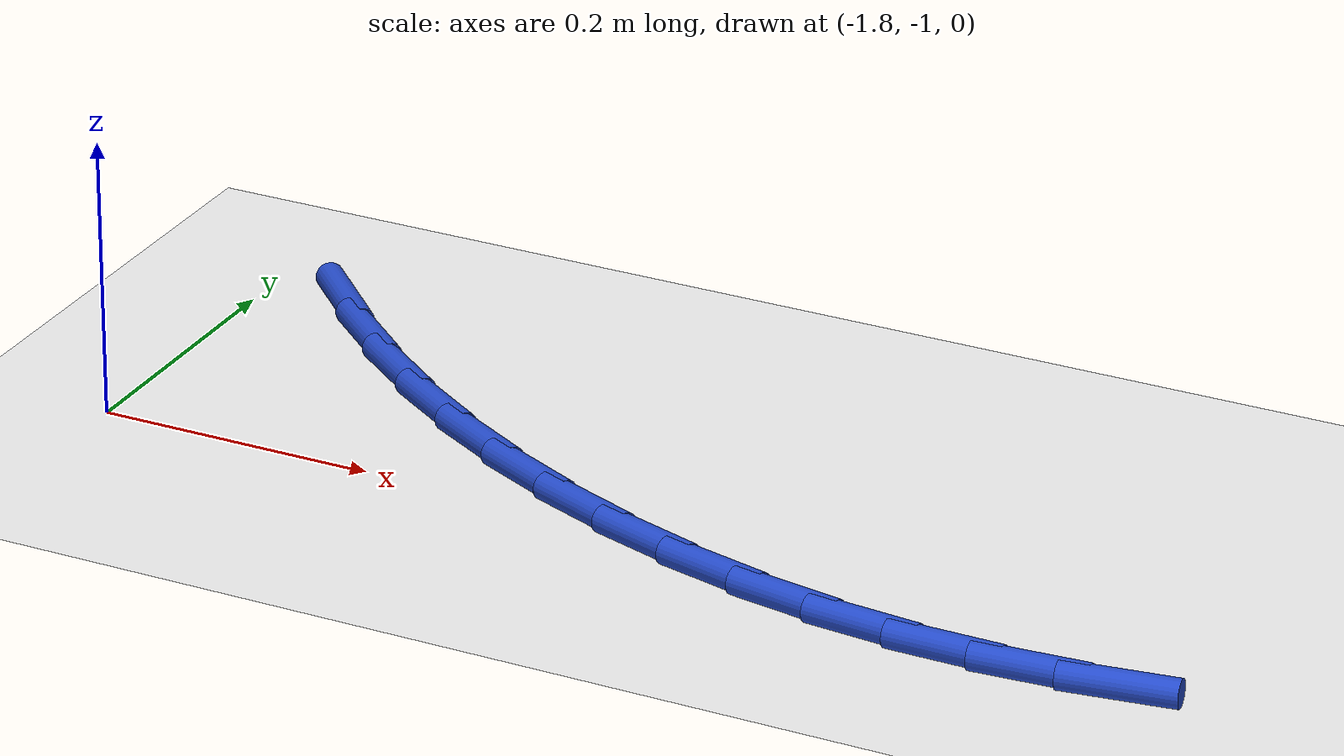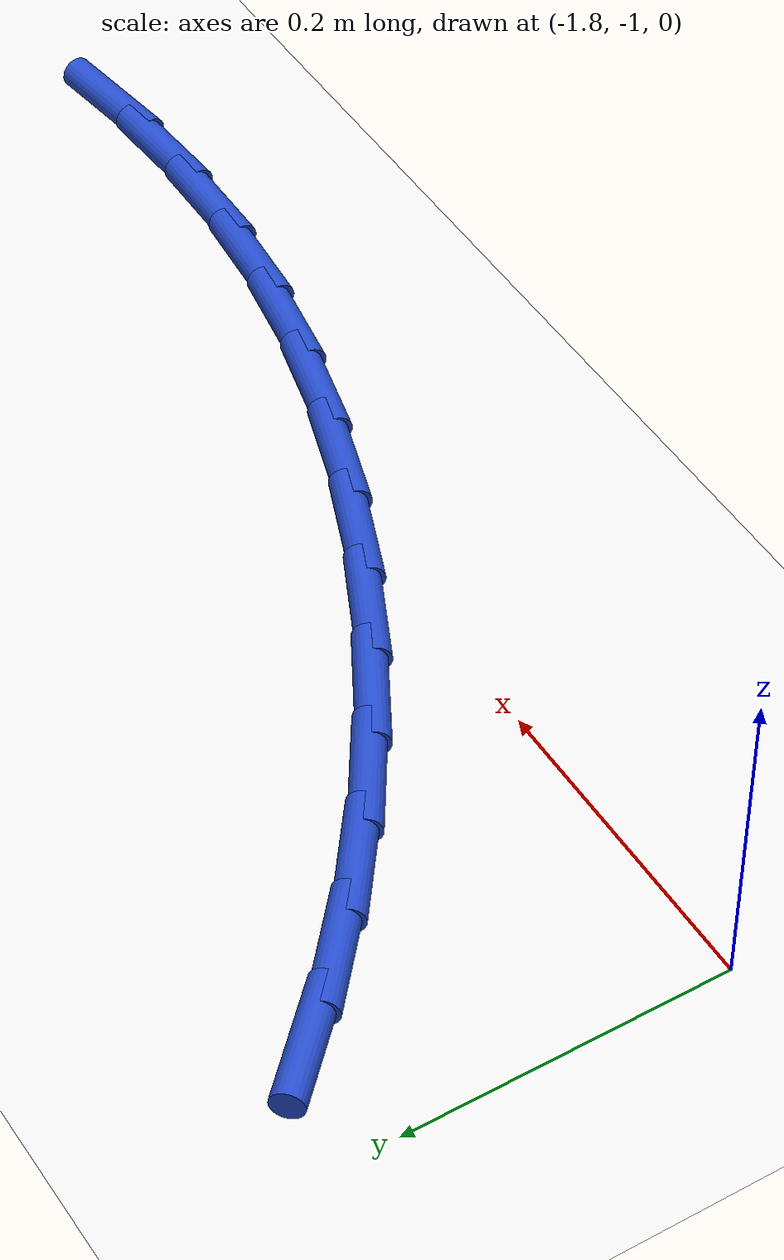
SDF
<sdf version="1.6">
 <world name="default">
  <model name="ground_plane">
   <static>1</static>
   <link name="link">
    <collision name="collision">
     <geometry><plane><normal>0 0 1</normal><size>100 100</size></plane></geometry>
     <surface><friction><ode><mu>100</mu><mu2>50</mu2></ode></friction></surface>
    </collision>
    <visual name="visual">
     <cast_shadows>0</cast_shadows>
     <geometry><plane><normal>0 0 1</normal><size>100 100</size></plane></geometry>
     <material>
      <script><uri>file://media/materials/scripts/gazebo.material</uri><name>Gazebo/WhiteGlow</name></script>
     </material>
    </visual>
   </link>
  </model>
  <model name="line">
   <link name="link_70">
    <pose>-1.7328685953419094 -0.7873683688100277 0.01 0 1.57 -0.7880001600384947</pose>
    <collision name="collision">
     <geometry><cylinder><radius>0.01</radius><length>0.08</length></cylinder></geometry>
    </collision>
    <visual name="visual">
     <material>
      <script><name>Gazebo/Blue</name><uri>file://media/materials/scripts/gazebo.material</uri></script>
     </material>
     <geometry><cylinder><radius>0.01</radius><length>0.08</length></cylinder></geometry>
    </visual>
   </link>
   <link name="link_71">
    <pose>-1.6908403208750549 -0.8296159292110135 0.01 0 1.57 -0.7175113855912427</pose>
    <collision name="collision">
     <geometry><cylinder><radius>0.01</radius><length>0.08</length></cylinder></geometry>
    </collision>
    <visual name="visual">
     <material>
      <script><name>Gazebo/Blue</name><uri>file://media/materials/scripts/gazebo.material</uri></script>
     </material>
     <geometry><cylinder><radius>0.01</radius><length>0.08</length></cylinder></geometry>
    </visual>
   </link>
   <link name="link_72">
    <pose>-1.6455370224708863 -0.8691509626701178 0.01 0 1.57 -0.6491471635430458</pose>
    <collision name="collision">
     <geometry><cylinder><radius>0.01</radius><length>0.08</length></cylinder></geometry>
    </collision>
    <visual name="visual">
     <material>
      <script><name>Gazebo/Blue</name><uri>file://media/materials/scripts/gazebo.material</uri></script>
     </material>
     <geometry><cylinder><radius>0.01</radius><length>0.08</length></cylinder></geometry>
    </visual>
   </link>
   <link name="link_73">
    <pose>-1.5973060216410886 -0.9057515192641417 0.01 0 1.57 -0.5821192138287719</pose>
    <collision name="collision">
     <geometry><cylinder><radius>0.01</radius><length>0.08</length></cylinder></geometry>
    </collision>
    <visual name="visual">
     <material>
      <script><name>Gazebo/Blue</name><uri>file://media/materials/scripts/gazebo.material</uri></script>
     </material>
     <geometry><cylinder><radius>0.01</radius><length>0.08</length></cylinder></geometry>
    </visual>
   </link>
   <link name="link_74">
    <pose>-1.5464946398973471 -0.9391956490698887 0.01 0 1.57 -0.5156522647246725</pose>
    <collision name="collision">
     <geometry><cylinder><radius>0.01</radius><length>0.08</length></cylinder></geometry>
    </collision>
    <visual name="visual">
     <material>
      <script><name>Gazebo/Blue</name><uri>file://media/materials/scripts/gazebo.material</uri></script>
     </material>
     <geometry><cylinder><radius>0.01</radius><length>0.08</length></cylinder></geometry>
    </visual>
   </link>
   <link name="link_75">
    <pose>-1.4934501987513455 -0.9692614021641598 0.01 0 1.57 -0.4489828645383769</pose>
    <collision name="collision">
     <geometry><cylinder><radius>0.01</radius><length>0.08</length></cylinder></geometry>
    </collision>
    <visual name="visual">
     <material>
      <script><name>Gazebo/Blue</name><uri>file://media/materials/scripts/gazebo.material</uri></script>
     </material>
     <geometry><cylinder><radius>0.01</radius><length>0.08</length></cylinder></geometry>
    </visual>
   </link>
   <link name="link_76">
    <pose>-1.438520019714768 -0.9957268286237582 0.01 0 1.57 -0.38135660213875633</pose>
    <collision name="collision">
     <geometry><cylinder><radius>0.01</radius><length>0.08</length></cylinder></geometry>
    </collision>
    <visual name="visual">
     <material>
      <script><name>Gazebo/Blue</name><uri>file://media/materials/scripts/gazebo.material</uri></script>
     </material>
     <geometry><cylinder><radius>0.01</radius><length>0.08</length></cylinder></geometry>
    </visual>
   </link>
   <link name="link_77">
    <pose>-1.3820514242993005 -1.018369978525486 0.01 0 1.57 -0.31202677942295703</pose>
    <collision name="collision">
     <geometry><cylinder><radius>0.01</radius><length>0.08</length></cylinder></geometry>
    </collision>
    <visual name="visual">
     <material>
      <script><name>Gazebo/Blue</name><uri>file://media/materials/scripts/gazebo.material</uri></script>
     </material>
     <geometry><cylinder><radius>0.01</radius><length>0.08</length></cylinder></geometry>
    </visual>
   </link>
   <link name="link_78">
    <pose>-1.3243917340166254 -1.0369689019461459 0.01 0 1.57 -0.2402575723037213</pose>
    <collision name="collision">
     <geometry><cylinder><radius>0.01</radius><length>0.08</length></cylinder></geometry>
    </collision>
    <visual name="visual">
     <material>
      <script><name>Gazebo/Blue</name><uri>file://media/materials/scripts/gazebo.material</uri></script>
     </material>
     <geometry><cylinder><radius>0.01</radius><length>0.08</length></cylinder></geometry>
    </visual>
   </link>
   <link name="link_79">
    <pose>-1.2658882703784287 -1.0513016489625389 0.01 0 1.57 -0.16533504473026397</pose>
    <collision name="collision">
     <geometry><cylinder><radius>0.01</radius><length>0.08</length></cylinder></geometry>
    </collision>
    <visual name="visual">
     <material>
      <script><name>Gazebo/Blue</name><uri>file://media/materials/scripts/gazebo.material</uri></script>
     </material>
     <geometry><cylinder><radius>0.01</radius><length>0.08</length></cylinder></geometry>
    </visual>
   </link>
   <link name="link_80">
    <pose>-1.2068883548963936 -1.0611462696514686 0.01 0 1.57 -0.08662736062963235</pose>
    <collision name="collision">
     <geometry><cylinder><radius>0.01</radius><length>0.08</length></cylinder></geometry>
    </collision>
    <visual name="visual">
     <material>
      <script><name>Gazebo/Blue</name><uri>file://media/materials/scripts/gazebo.material</uri></script>
     </material>
     <geometry><cylinder><radius>0.01</radius><length>0.08</length></cylinder></geometry>
    </visual>
   </link>
   <link name="link_81">
    <pose>-1.147738214651512 -1.0662831461682931 0.01 0 1.57 -0.0066699369315322676</pose>
    <collision name="collision">
     <geometry><cylinder><radius>0.01</radius><length>0.08</length></cylinder></geometry>
    </collision>
    <visual name="visual">
     <material>
      <script><name>Gazebo/Blue</name><uri>file://media/materials/scripts/gazebo.material</uri></script>
     </material>
     <geometry><cylinder><radius>0.01</radius><length>0.08</length></cylinder></geometry>
    </visual>
   </link>
   <link name="link_82">
    <pose>-1.0886975911849954 -1.0666769492430752 0.01 0 1.57 0.0690855090024611</pose>
    <collision name="collision">
     <geometry><cylinder><radius>0.01</radius><length>0.08</length></cylinder></geometry>
    </collision>
    <visual name="visual">
     <material>
      <script><name>Gazebo/Blue</name><uri>file://media/materials/scripts/gazebo.material</uri></script>
     </material>
     <geometry><cylinder><radius>0.01</radius><length>0.08</length></cylinder></geometry>
    </visual>
   </link>
   <link name="link_83">
    <pose>-1.0298785945093658 -1.0626069317206908 0.01 0 1.57 0.13966388527016865</pose>
    <collision name="collision">
     <geometry><cylinder><radius>0.01</radius><length>0.08</length></cylinder></geometry>
    </collision>
    <visual name="visual">
     <material>
      <script><name>Gazebo/Blue</name><uri>file://media/materials/scripts/gazebo.material</uri></script>
     </material>
     <geometry><cylinder><radius>0.01</radius><length>0.08</length></cylinder></geometry>
    </visual>
   </link>
  </model>
 </world>
</sdf>
